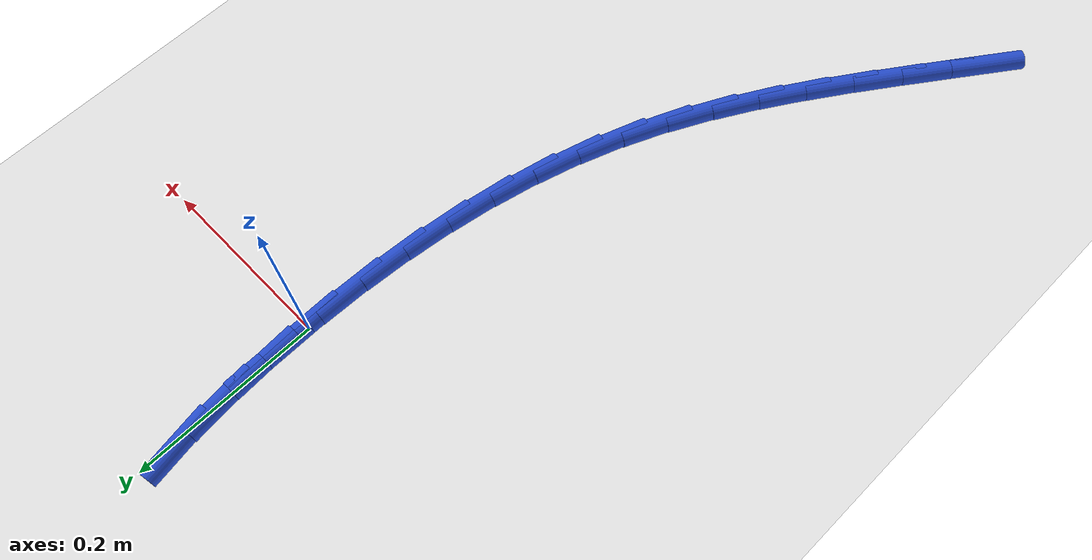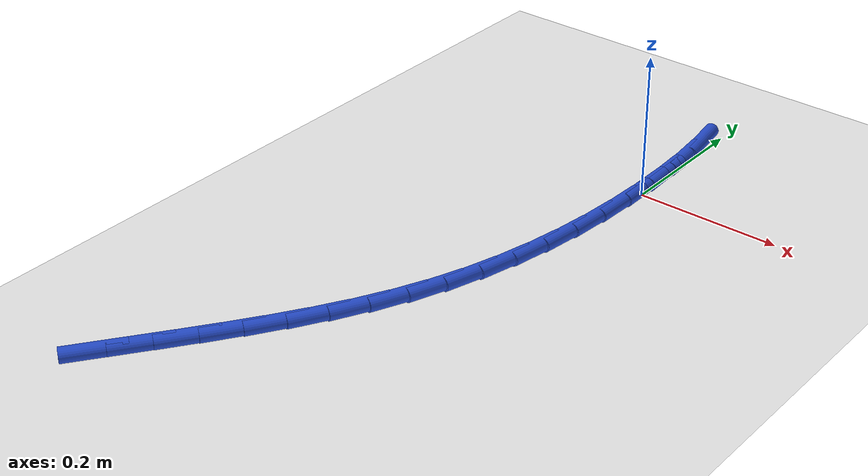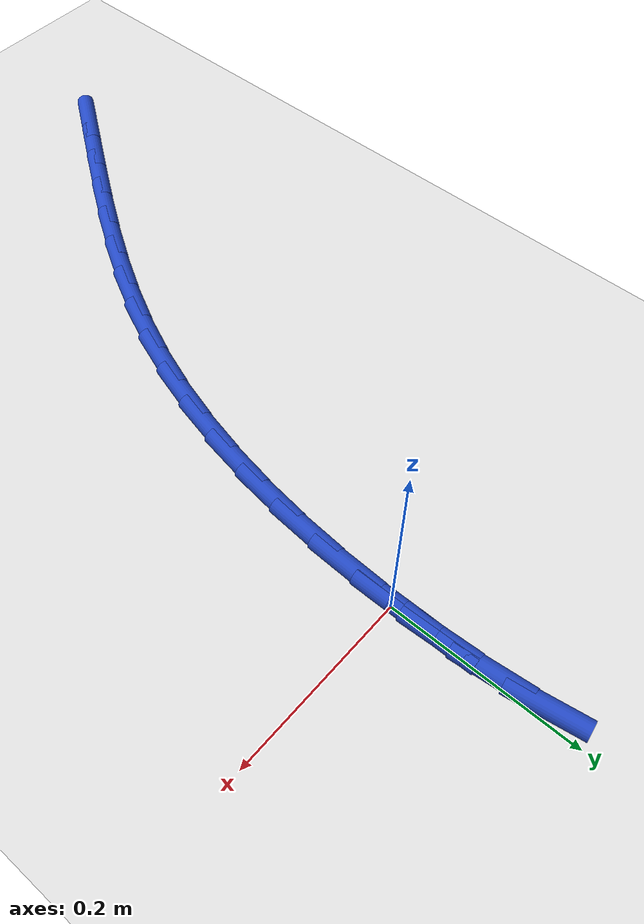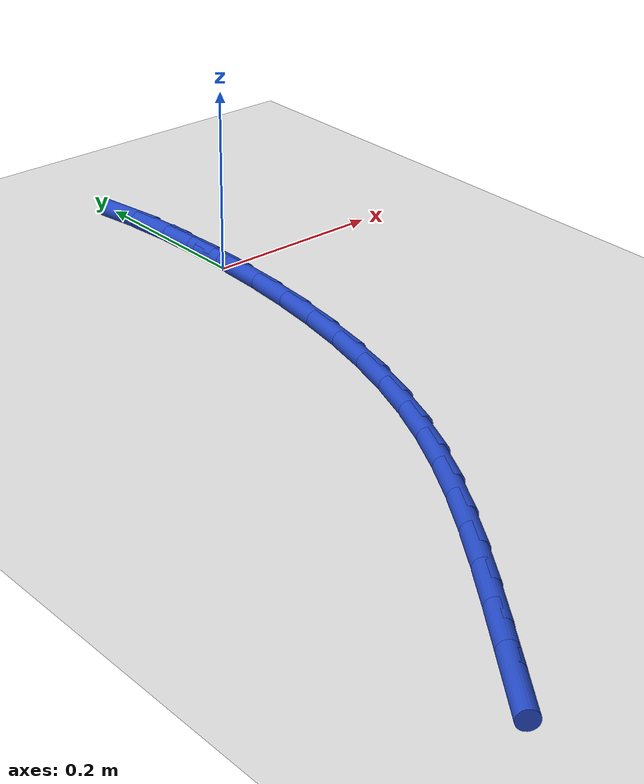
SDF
<sdf version="1.6">
 <world name="default">
  <model name="ground_plane">
   <static>1</static>
   <link name="link">
    <collision name="collision">
     <geometry><plane><normal>0 0 1</normal><size>100 100</size></plane></geometry>
     <surface><friction><ode><mu>100</mu><mu2>50</mu2></ode></friction></surface>
    </collision>
    <visual name="visual">
     <cast_shadows>0</cast_shadows>
     <geometry><plane><normal>0 0 1</normal><size>100 100</size></plane></geometry>
     <material>
      <script><uri>file://media/materials/scripts/gazebo.material</uri><name>Gazebo/WhiteGlow</name></script>
     </material>
    </visual>
   </link>
  </model>
  <model name="line">
   <link name="link_0">
    <pose>4.336808689942018e-18 2.7755575615628914e-17 0.01 0 1.57 -1.5653542671570166</pose>
    <collision name="collision">
     <geometry><cylinder><radius>0.01</radius><length>0.08</length></cylinder></geometry>
    </collision>
    <visual name="visual">
     <material>
      <script><name>Gazebo/Blue</name><uri>file://media/materials/scripts/gazebo.material</uri></script>
     </material>
     <geometry><cylinder><radius>0.01</radius><length>0.08</length></cylinder></geometry>
    </visual>
   </link>
   <link name="link_1">
    <pose>-0.0002897953312062238 0.05325051352298232 0.01 0 1.57 -1.5207032406293453</pose>
    <collision name="collision">
     <geometry><cylinder><radius>0.01</radius><length>0.08</length></cylinder></geometry>
    </collision>
    <visual name="visual">
     <material>
      <script><name>Gazebo/Blue</name><uri>file://media/materials/scripts/gazebo.material</uri></script>
     </material>
     <geometry><cylinder><radius>0.01</radius><length>0.08</length></cylinder></geometry>
    </visual>
   </link>
   <link name="link_2">
    <pose>-0.0029570977130778395 0.10645288487942414 0.01 0 1.57 -1.4692730356951718</pose>
    <collision name="collision">
     <geometry><cylinder><radius>0.01</radius><length>0.08</length></cylinder></geometry>
    </collision>
    <visual name="visual">
     <material>
      <script><name>Gazebo/Blue</name><uri>file://media/materials/scripts/gazebo.material</uri></script>
     </material>
     <geometry><cylinder><radius>0.01</radius><length>0.08</length></cylinder></geometry>
    </visual>
   </link>
   <link name="link_3">
    <pose>-0.008315327640902419 0.15904976343120628 0.01 0 1.57 -1.4096182883418253</pose>
    <collision name="collision">
     <geometry><cylinder><radius>0.01</radius><length>0.08</length></cylinder></geometry>
    </collision>
    <visual name="visual">
     <material>
      <script><name>Gazebo/Blue</name><uri>file://media/materials/scripts/gazebo.material</uri></script>
     </material>
     <geometry><cylinder><radius>0.01</radius><length>0.08</length></cylinder></geometry>
    </visual>
   </link>
   <link name="link_155">
    <pose>-0.2792834704004513 -0.6988840974693992 0.01 0 1.57 0.9426123074626584</pose>
    <collision name="collision">
     <geometry><cylinder><radius>0.01</radius><length>0.08</length></cylinder></geometry>
    </collision>
    <visual name="visual">
     <material>
      <script><name>Gazebo/Blue</name><uri>file://media/materials/scripts/gazebo.material</uri></script>
     </material>
     <geometry><cylinder><radius>0.01</radius><length>0.08</length></cylinder></geometry>
    </visual>
   </link>
   <link name="link_156">
    <pose>-0.247712868315732 -0.6554185977752328 0.01 0 1.57 0.9452571181345747</pose>
    <collision name="collision">
     <geometry><cylinder><radius>0.01</radius><length>0.08</length></cylinder></geometry>
    </collision>
    <visual name="visual">
     <material>
      <script><name>Gazebo/Blue</name><uri>file://media/materials/scripts/gazebo.material</uri></script>
     </material>
     <geometry><cylinder><radius>0.01</radius><length>0.08</length></cylinder></geometry>
    </visual>
   </link>
   <link name="link_157">
    <pose>-0.21676340376878436 -0.6125703832217323 0.01 0 1.57 0.9564991269820151</pose>
    <collision name="collision">
     <geometry><cylinder><radius>0.01</radius><length>0.08</length></cylinder></geometry>
    </collision>
    <visual name="visual">
     <material>
      <script><name>Gazebo/Blue</name><uri>file://media/materials/scripts/gazebo.material</uri></script>
     </material>
     <geometry><cylinder><radius>0.01</radius><length>0.08</length></cylinder></geometry>
    </visual>
   </link>
   <link name="link_158">
    <pose>-0.18677359617010467 -0.5700518226780413 0.01 0 1.57 0.9772150557585142</pose>
    <collision name="collision">
     <geometry><cylinder><radius>0.01</radius><length>0.08</length></cylinder></geometry>
    </collision>
    <visual name="visual">
     <material>
      <script><name>Gazebo/Blue</name><uri>file://media/materials/scripts/gazebo.material</uri></script>
     </material>
     <geometry><cylinder><radius>0.01</radius><length>0.08</length></cylinder></geometry>
    </visual>
   </link>
   <link name="link_159">
    <pose>-0.1580962847972521 -0.5275514850303035 0.01 0 1.57 1.0077394773608797</pose>
    <collision name="collision">
     <geometry><cylinder><radius>0.01</radius><length>0.08</length></cylinder></geometry>
    </collision>
    <visual name="visual">
     <material>
      <script><name>Gazebo/Blue</name><uri>file://media/materials/scripts/gazebo.material</uri></script>
     </material>
     <geometry><cylinder><radius>0.01</radius><length>0.08</length></cylinder></geometry>
    </visual>
   </link>
   <link name="link_160">
    <pose>-0.13108430892778447 -0.4847579391646619 0.01 0 1.57 1.0482723316399312</pose>
    <collision name="collision">
     <geometry><cylinder><radius>0.01</radius><length>0.08</length></cylinder></geometry>
    </collision>
    <visual name="visual">
     <material>
      <script><name>Gazebo/Blue</name><uri>file://media/materials/scripts/gazebo.material</uri></script>
     </material>
     <geometry><cylinder><radius>0.01</radius><length>0.08</length></cylinder></geometry>
    </visual>
   </link>
   <link name="link_161">
    <pose>-0.10609050783926002 -0.4413597539672594 0.01 0 1.57 1.098777609529882</pose>
    <collision name="collision">
     <geometry><cylinder><radius>0.01</radius><length>0.08</length></cylinder></geometry>
    </collision>
    <visual name="visual">
     <material>
      <script><name>Gazebo/Blue</name><uri>file://media/materials/scripts/gazebo.material</uri></script>
     </material>
     <geometry><cylinder><radius>0.01</radius><length>0.08</length></cylinder></geometry>
    </visual>
   </link>
   <link name="link_162">
    <pose>-0.08346772080923695 -0.39704549832423924 0.01 0 1.57 1.1588378994413604</pose>
    <collision name="collision">
     <geometry><cylinder><radius>0.01</radius><length>0.08</length></cylinder></geometry>
    </collision>
    <visual name="visual">
     <material>
      <script><name>Gazebo/Blue</name><uri>file://media/materials/scripts/gazebo.material</uri></script>
     </material>
     <geometry><cylinder><radius>0.01</radius><length>0.08</length></cylinder></geometry>
    </visual>
   </link>
   <link name="link_163">
    <pose>-0.06356802845078664 -0.35150444036956874 0.01 0 1.57 1.2240596328059579</pose>
    <collision name="collision">
     <geometry><cylinder><radius>0.01</radius><length>0.08</length></cylinder></geometry>
    </collision>
    <visual name="visual">
     <material>
      <script><name>Gazebo/Blue</name><uri>file://media/materials/scripts/gazebo.material</uri></script>
     </material>
     <geometry><cylinder><radius>0.01</radius><length>0.08</length></cylinder></geometry>
    </visual>
   </link>
   <link name="link_164">
    <pose>-0.04660351933254775 -0.3045548764628883 0.01 0 1.57 1.2861651194028543</pose>
    <collision name="collision">
     <geometry><cylinder><radius>0.01</radius><length>0.08</length></cylinder></geometry>
    </collision>
    <visual name="visual">
     <material>
      <script><name>Gazebo/Blue</name><uri>file://media/materials/scripts/gazebo.material</uri></script>
     </material>
     <geometry><cylinder><radius>0.01</radius><length>0.08</length></cylinder></geometry>
    </visual>
   </link>
   <link name="link_165">
    <pose>-0.032483605629947204 -0.2562940745163005 0.01 0 1.57 1.344063757246126</pose>
    <collision name="collision">
     <geometry><cylinder><radius>0.01</radius><length>0.08</length></cylinder></geometry>
    </collision>
    <visual name="visual">
     <material>
      <script><name>Gazebo/Blue</name><uri>file://media/materials/scripts/gazebo.material</uri></script>
     </material>
     <geometry><cylinder><radius>0.01</radius><length>0.08</length></cylinder></geometry>
    </visual>
   </link>
   <link name="link_166">
    <pose>-0.021078202532941598 -0.20685570612452664 0.01 0 1.57 1.3978085848916693</pose>
    <collision name="collision">
     <geometry><cylinder><radius>0.01</radius><length>0.08</length></cylinder></geometry>
    </collision>
    <visual name="visual">
     <material>
      <script><name>Gazebo/Blue</name><uri>file://media/materials/scripts/gazebo.material</uri></script>
     </material>
     <geometry><cylinder><radius>0.01</radius><length>0.08</length></cylinder></geometry>
    </visual>
   </link>
   <link name="link_167">
    <pose>-0.012257225231487501 -0.15637344288228833 0.01 0 1.57 1.4475416642282906</pose>
    <collision name="collision">
     <geometry><cylinder><radius>0.01</radius><length>0.08</length></cylinder></geometry>
    </collision>
    <visual name="visual">
     <material>
      <script><name>Gazebo/Blue</name><uri>file://media/materials/scripts/gazebo.material</uri></script>
     </material>
     <geometry><cylinder><radius>0.01</radius><length>0.08</length></cylinder></geometry>
    </visual>
   </link>
   <link name="link_168">
    <pose>-0.005890588915541391 -0.10498095638430595 0.01 0 1.57 1.493464656420023</pose>
    <collision name="collision">
     <geometry><cylinder><radius>0.01</radius><length>0.08</length></cylinder></geometry>
    </collision>
    <visual name="visual">
     <material>
      <script><name>Gazebo/Blue</name><uri>file://media/materials/scripts/gazebo.material</uri></script>
     </material>
     <geometry><cylinder><radius>0.01</radius><length>0.08</length></cylinder></geometry>
    </visual>
   </link>
   <link name="link_169">
    <pose>-0.0018482087750600774 -0.05281191822530303 0.01 0 1.57 1.5358145485148125</pose>
    <collision name="collision">
     <geometry><cylinder><radius>0.01</radius><length>0.08</length></cylinder></geometry>
    </collision>
    <visual name="visual">
     <material>
      <script><name>Gazebo/Blue</name><uri>file://media/materials/scripts/gazebo.material</uri></script>
     </material>
     <geometry><cylinder><radius>0.01</radius><length>0.08</length></cylinder></geometry>
    </visual>
   </link>
   <link name="link_170">
    <pose>6.071532165918825e-18 4.163336342344337e-17 0.01 0 1.57 -1.566747713905671</pose>
    <collision name="collision">
     <geometry><cylinder><radius>0.01</radius><length>0.08</length></cylinder></geometry>
    </collision>
    <visual name="visual">
     <material>
      <script><name>Gazebo/Blue</name><uri>file://media/materials/scripts/gazebo.material</uri></script>
     </material>
     <geometry><cylinder><radius>0.01</radius><length>0.08</length></cylinder></geometry>
    </visual>
   </link>
   <link name="link_171">
    <pose>-0.00021587778031771122 0.05332112669688175 0.01 0 1.57 -1.566747713905671</pose>
    <collision name="collision">
     <geometry><cylinder><radius>0.01</radius><length>0.08</length></cylinder></geometry>
    </collision>
    <visual name="visual">
     <material>
      <script><name>Gazebo/Blue</name><uri>file://media/materials/scripts/gazebo.material</uri></script>
     </material>
     <geometry><cylinder><radius>0.01</radius><length>0.08</length></cylinder></geometry>
    </visual>
   </link>
  </model>
 </world>
</sdf>
